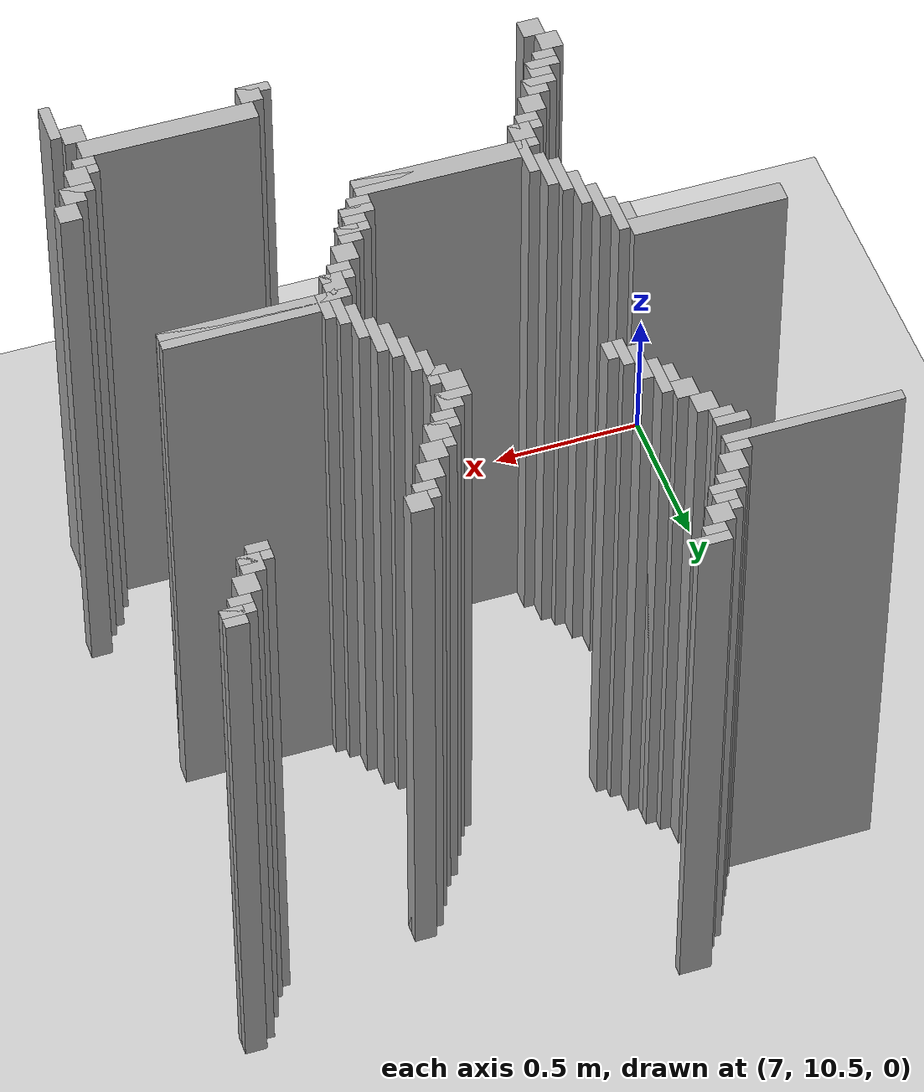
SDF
<sdf version="1.6">
 <world name="slam_world">
  <model name="ground_plane">
   <static>true</static>
   <link name="link">
    <collision name="collision">
     <geometry><plane><normal>0 0 1</normal><size>100 100</size></plane></geometry>
    </collision>
    <visual name="visual">
     <geometry><plane><normal>0 0 1</normal><size>100 100</size></plane></geometry>
     <material>
      <ambient>0.8 0.8 0.8 1</ambient>
      <diffuse>0.8 0.8 0.8 1</diffuse>
      <specular>0.8 0.8 0.8 1</specular>
     </material>
    </visual>
   </link>
  </model>
  <model name="wall_1577">
   <static>true</static>
   <pose>7.604408352668213 12.685614849187935 1.0 0 0 0</pose>
   <link name="link">
    <collision name="collision">
     <geometry><box><size>0.10440835266821345 0.03480278422273782 2.0</size></box></geometry>
    </collision>
    <visual name="visual">
     <geometry><box><size>0.10440835266821345 0.03480278422273782 2.0</size></box></geometry>
     <material><ambient>0.5 0.5 0.5 1</ambient><diffuse>0.7 0.7 0.7 1</diffuse></material>
    </visual>
   </link>
  </model>
  <model name="wall_1592">
   <static>true</static>
   <pose>7.587006960556844 12.650812064965196 1.0 0 0 0</pose>
   <link name="link">
    <collision name="collision">
     <geometry><box><size>0.06960556844547564 0.03480278422273782 2.0</size></box></geometry>
    </collision>
    <visual name="visual">
     <geometry><box><size>0.06960556844547564 0.03480278422273782 2.0</size></box></geometry>
     <material><ambient>0.5 0.5 0.5 1</ambient><diffuse>0.7 0.7 0.7 1</diffuse></material>
    </visual>
   </link>
  </model>
  <model name="wall_1607">
   <static>true</static>
   <pose>7.552204176334106 12.59860788863109 1.0 0 0 0</pose>
   <link name="link">
    <collision name="collision">
     <geometry><box><size>0.06960556844547564 0.06960556844547564 2.0</size></box></geometry>
    </collision>
    <visual name="visual">
     <geometry><box><size>0.06960556844547564 0.06960556844547564 2.0</size></box></geometry>
     <material><ambient>0.5 0.5 0.5 1</ambient><diffuse>0.7 0.7 0.7 1</diffuse></material>
    </visual>
   </link>
  </model>
  <model name="wall_1624">
   <static>true</static>
   <pose>7.534802784222737 12.581206496519721 1.0 0 0 0</pose>
   <link name="link">
    <collision name="collision">
     <geometry><box><size>0.10440835266821345 0.03480278422273782 2.0</size></box></geometry>
    </collision>
    <visual name="visual">
     <geometry><box><size>0.10440835266821345 0.03480278422273782 2.0</size></box></geometry>
     <material><ambient>0.5 0.5 0.5 1</ambient><diffuse>0.7 0.7 0.7 1</diffuse></material>
    </visual>
   </link>
  </model>
  <model name="wall_1637">
   <static>true</static>
   <pose>7.517401392111369 12.529002320185615 1.0 0 0 0</pose>
   <link name="link">
    <collision name="collision">
     <geometry><box><size>0.06960556844547564 0.06960556844547564 2.0</size></box></geometry>
    </collision>
    <visual name="visual">
     <geometry><box><size>0.06960556844547564 0.06960556844547564 2.0</size></box></geometry>
     <material><ambient>0.5 0.5 0.5 1</ambient><diffuse>0.7 0.7 0.7 1</diffuse></material>
    </visual>
   </link>
  </model>
  <model name="wall_1638">
   <static>true</static>
   <pose>8.979118329466356 12.529002320185615 1.0 0 0 0</pose>
   <link name="link">
    <collision name="collision">
     <geometry><box><size>0.06960556844547564 0.06960556844547564 2.0</size></box></geometry>
    </collision>
    <visual name="visual">
     <geometry><box><size>0.06960556844547564 0.06960556844547564 2.0</size></box></geometry>
     <material><ambient>0.5 0.5 0.5 1</ambient><diffuse>0.7 0.7 0.7 1</diffuse></material>
    </visual>
   </link>
  </model>
  <model name="wall_1652">
   <static>true</static>
   <pose>7.5 12.511600928074245 1.0 0 0 0</pose>
   <link name="link">
    <collision name="collision">
     <geometry><box><size>0.10440835266821345 0.03480278422273782 2.0</size></box></geometry>
    </collision>
    <visual name="visual">
     <geometry><box><size>0.10440835266821345 0.03480278422273782 2.0</size></box></geometry>
     <material><ambient>0.5 0.5 0.5 1</ambient><diffuse>0.7 0.7 0.7 1</diffuse></material>
    </visual>
   </link>
  </model>
  <model name="wall_1653">
   <static>true</static>
   <pose>8.961716937354987 12.511600928074245 1.0 0 0 0</pose>
   <link name="link">
    <collision name="collision">
     <geometry><box><size>0.10440835266821345 0.03480278422273782 2.0</size></box></geometry>
    </collision>
    <visual name="visual">
     <geometry><box><size>0.10440835266821345 0.03480278422273782 2.0</size></box></geometry>
     <material><ambient>0.5 0.5 0.5 1</ambient><diffuse>0.7 0.7 0.7 1</diffuse></material>
    </visual>
   </link>
  </model>
  <model name="wall_1665">
   <static>true</static>
   <pose>7.48259860788863 12.476798143851507 1.0 0 0 0</pose>
   <link name="link">
    <collision name="collision">
     <geometry><box><size>0.06960556844547564 0.03480278422273782 2.0</size></box></geometry>
    </collision>
    <visual name="visual">
     <geometry><box><size>0.06960556844547564 0.03480278422273782 2.0</size></box></geometry>
     <material><ambient>0.5 0.5 0.5 1</ambient><diffuse>0.7 0.7 0.7 1</diffuse></material>
    </visual>
   </link>
  </model>
  <model name="wall_1666">
   <static>true</static>
   <pose>8.944315545243619 12.476798143851507 1.0 0 0 0</pose>
   <link name="link">
    <collision name="collision">
     <geometry><box><size>0.06960556844547564 0.03480278422273782 2.0</size></box></geometry>
    </collision>
    <visual name="visual">
     <geometry><box><size>0.06960556844547564 0.03480278422273782 2.0</size></box></geometry>
     <material><ambient>0.5 0.5 0.5 1</ambient><diffuse>0.7 0.7 0.7 1</diffuse></material>
    </visual>
   </link>
  </model>
  <model name="wall_1678">
   <static>true</static>
   <pose>7.447795823665893 12.424593967517401 1.0 0 0 0</pose>
   <link name="link">
    <collision name="collision">
     <geometry><box><size>0.06960556844547564 0.06960556844547564 2.0</size></box></geometry>
    </collision>
    <visual name="visual">
     <geometry><box><size>0.06960556844547564 0.06960556844547564 2.0</size></box></geometry>
     <material><ambient>0.5 0.5 0.5 1</ambient><diffuse>0.7 0.7 0.7 1</diffuse></material>
    </visual>
   </link>
  </model>
  <model name="wall_1679">
   <static>true</static>
   <pose>8.909512761020881 12.424593967517401 1.0 0 0 0</pose>
   <link name="link">
    <collision name="collision">
     <geometry><box><size>0.06960556844547564 0.06960556844547564 2.0</size></box></geometry>
    </collision>
    <visual name="visual">
     <geometry><box><size>0.06960556844547564 0.06960556844547564 2.0</size></box></geometry>
     <material><ambient>0.5 0.5 0.5 1</ambient><diffuse>0.7 0.7 0.7 1</diffuse></material>
    </visual>
   </link>
  </model>
  <model name="wall_1695">
   <static>true</static>
   <pose>7.412993039443156 12.354988399071924 1.0 0 0 0</pose>
   <link name="link">
    <collision name="collision">
     <geometry><box><size>0.06960556844547564 0.06960556844547564 2.0</size></box></geometry>
    </collision>
    <visual name="visual">
     <geometry><box><size>0.06960556844547564 0.06960556844547564 2.0</size></box></geometry>
     <material><ambient>0.5 0.5 0.5 1</ambient><diffuse>0.7 0.7 0.7 1</diffuse></material>
    </visual>
   </link>
  </model>
  <model name="wall_1696">
   <static>true</static>
   <pose>8.874709976798144 12.354988399071924 1.0 0 0 0</pose>
   <link name="link">
    <collision name="collision">
     <geometry><box><size>0.06960556844547564 0.06960556844547564 2.0</size></box></geometry>
    </collision>
    <visual name="visual">
     <geometry><box><size>0.06960556844547564 0.06960556844547564 2.0</size></box></geometry>
     <material><ambient>0.5 0.5 0.5 1</ambient><diffuse>0.7 0.7 0.7 1</diffuse></material>
    </visual>
   </link>
  </model>
  <model name="wall_1711">
   <static>true</static>
   <pose>7.16937354988399 12.337587006960556 1.0 0 0 0</pose>
   <link name="link">
    <collision name="collision">
     <geometry><box><size>0.5568445475638051 0.03480278422273782 2.0</size></box></geometry>
    </collision>
    <visual name="visual">
     <geometry><box><size>0.5568445475638051 0.03480278422273782 2.0</size></box></geometry>
     <material><ambient>0.5 0.5 0.5 1</ambient><diffuse>0.7 0.7 0.7 1</diffuse></material>
    </visual>
   </link>
  </model>
  <model name="wall_1712">
   <static>true</static>
   <pose>8.857308584686775 12.337587006960556 1.0 0 0 0</pose>
   <link name="link">
    <collision name="collision">
     <geometry><box><size>0.10440835266821345 0.03480278422273782 2.0</size></box></geometry>
    </collision>
    <visual name="visual">
     <geometry><box><size>0.10440835266821345 0.03480278422273782 2.0</size></box></geometry>
     <material><ambient>0.5 0.5 0.5 1</ambient><diffuse>0.7 0.7 0.7 1</diffuse></material>
    </visual>
   </link>
  </model>
  <model name="wall_1725">
   <static>true</static>
   <pose>8.352668213457076 12.28538283062645 1.0 0 0 0</pose>
   <link name="link">
    <collision name="collision">
     <geometry><box><size>0.06960556844547564 0.06960556844547564 2.0</size></box></geometry>
    </collision>
    <visual name="visual">
     <geometry><box><size>0.06960556844547564 0.06960556844547564 2.0</size></box></geometry>
     <material><ambient>0.5 0.5 0.5 1</ambient><diffuse>0.7 0.7 0.7 1</diffuse></material>
    </visual>
   </link>
  </model>
  <model name="wall_1726">
   <static>true</static>
   <pose>8.839907192575406 12.302784222737818 1.0 0 0 0</pose>
   <link name="link">
    <collision name="collision">
     <geometry><box><size>0.06960556844547564 0.03480278422273782 2.0</size></box></geometry>
    </collision>
    <visual name="visual">
     <geometry><box><size>0.06960556844547564 0.03480278422273782 2.0</size></box></geometry>
     <material><ambient>0.5 0.5 0.5 1</ambient><diffuse>0.7 0.7 0.7 1</diffuse></material>
    </visual>
   </link>
  </model>
  <model name="wall_1741">
   <static>true</static>
   <pose>7.395591647331786 12.267981438515081 1.0 0 0 0</pose>
   <link name="link">
    <collision name="collision">
     <geometry><box><size>0.10440835266821345 0.03480278422273782 2.0</size></box></geometry>
    </collision>
    <visual name="visual">
     <geometry><box><size>0.10440835266821345 0.03480278422273782 2.0</size></box></geometry>
     <material><ambient>0.5 0.5 0.5 1</ambient><diffuse>0.7 0.7 0.7 1</diffuse></material>
    </visual>
   </link>
  </model>
  <model name="wall_1742">
   <static>true</static>
   <pose>8.335266821345707 12.267981438515081 1.0 0 0 0</pose>
   <link name="link">
    <collision name="collision">
     <geometry><box><size>0.10440835266821345 0.03480278422273782 2.0</size></box></geometry>
    </collision>
    <visual name="visual">
     <geometry><box><size>0.10440835266821345 0.03480278422273782 2.0</size></box></geometry>
     <material><ambient>0.5 0.5 0.5 1</ambient><diffuse>0.7 0.7 0.7 1</diffuse></material>
    </visual>
   </link>
  </model>
  <model name="wall_1759">
   <static>true</static>
   <pose>7.412993039443156 12.233178654292344 1.0 0 0 0</pose>
   <link name="link">
    <collision name="collision">
     <geometry><box><size>0.06960556844547564 0.03480278422273782 2.0</size></box></geometry>
    </collision>
    <visual name="visual">
     <geometry><box><size>0.06960556844547564 0.03480278422273782 2.0</size></box></geometry>
     <material><ambient>0.5 0.5 0.5 1</ambient><diffuse>0.7 0.7 0.7 1</diffuse></material>
    </visual>
   </link>
  </model>
  <model name="wall_1760">
   <static>true</static>
   <pose>8.317865429234338 12.233178654292344 1.0 0 0 0</pose>
   <link name="link">
    <collision name="collision">
     <geometry><box><size>0.06960556844547564 0.03480278422273782 2.0</size></box></geometry>
    </collision>
    <visual name="visual">
     <geometry><box><size>0.06960556844547564 0.03480278422273782 2.0</size></box></geometry>
     <material><ambient>0.5 0.5 0.5 1</ambient><diffuse>0.7 0.7 0.7 1</diffuse></material>
    </visual>
   </link>
  </model>
  <model name="wall_1775">
   <static>true</static>
   <pose>7.447795823665893 12.180974477958236 1.0 0 0 0</pose>
   <link name="link">
    <collision name="collision">
     <geometry><box><size>0.06960556844547564 0.06960556844547564 2.0</size></box></geometry>
    </collision>
    <visual name="visual">
     <geometry><box><size>0.06960556844547564 0.06960556844547564 2.0</size></box></geometry>
     <material><ambient>0.5 0.5 0.5 1</ambient><diffuse>0.7 0.7 0.7 1</diffuse></material>
    </visual>
   </link>
  </model>
  <model name="wall_1776">
   <static>true</static>
   <pose>8.2830626450116 12.180974477958236 1.0 0 0 0</pose>
   <link name="link">
    <collision name="collision">
     <geometry><box><size>0.06960556844547564 0.06960556844547564 2.0</size></box></geometry>
    </collision>
    <visual name="visual">
     <geometry><box><size>0.06960556844547564 0.06960556844547564 2.0</size></box></geometry>
     <material><ambient>0.5 0.5 0.5 1</ambient><diffuse>0.7 0.7 0.7 1</diffuse></material>
    </visual>
   </link>
  </model>
  <model name="wall_1791">
   <static>true</static>
   <pose>7.48259860788863 12.11136890951276 1.0 0 0 0</pose>
   <link name="link">
    <collision name="collision">
     <geometry><box><size>0.06960556844547564 0.06960556844547564 2.0</size></box></geometry>
    </collision>
    <visual name="visual">
     <geometry><box><size>0.06960556844547564 0.06960556844547564 2.0</size></box></geometry>
     <material><ambient>0.5 0.5 0.5 1</ambient><diffuse>0.7 0.7 0.7 1</diffuse></material>
    </visual>
   </link>
  </model>
  <model name="wall_1792">
   <static>true</static>
   <pose>8.248259860788863 12.11136890951276 1.0 0 0 0</pose>
   <link name="link">
    <collision name="collision">
     <geometry><box><size>0.06960556844547564 0.06960556844547564 2.0</size></box></geometry>
    </collision>
    <visual name="visual">
     <geometry><box><size>0.06960556844547564 0.06960556844547564 2.0</size></box></geometry>
     <material><ambient>0.5 0.5 0.5 1</ambient><diffuse>0.7 0.7 0.7 1</diffuse></material>
    </visual>
   </link>
  </model>
  <model name="wall_1807">
   <static>true</static>
   <pose>7.534802784222737 12.041763341067284 1.0 0 0 0</pose>
   <link name="link">
    <collision name="collision">
     <geometry><box><size>0.03480278422273782 0.13921113689095127 2.0</size></box></geometry>
    </collision>
    <visual name="visual">
     <geometry><box><size>0.03480278422273782 0.13921113689095127 2.0</size></box></geometry>
     <material><ambient>0.5 0.5 0.5 1</ambient><diffuse>0.7 0.7 0.7 1</diffuse></material>
    </visual>
   </link>
  </model>
  <model name="wall_1808">
   <static>true</static>
   <pose>8.230858468677495 12.093967517401392 1.0 0 0 0</pose>
   <link name="link">
    <collision name="collision">
     <geometry><box><size>0.10440835266821345 0.03480278422273782 2.0</size></box></geometry>
    </collision>
    <visual name="visual">
     <geometry><box><size>0.10440835266821345 0.03480278422273782 2.0</size></box></geometry>
     <material><ambient>0.5 0.5 0.5 1</ambient><diffuse>0.7 0.7 0.7 1</diffuse></material>
    </visual>
   </link>
  </model>
  <model name="wall_1819">
   <static>true</static>
   <pose>7.517401392111369 12.041763341067284 1.0 0 0 0</pose>
   <link name="link">
    <collision name="collision">
     <geometry><box><size>0.06960556844547564 0.06960556844547564 2.0</size></box></geometry>
    </collision>
    <visual name="visual">
     <geometry><box><size>0.06960556844547564 0.06960556844547564 2.0</size></box></geometry>
     <material><ambient>0.5 0.5 0.5 1</ambient><diffuse>0.7 0.7 0.7 1</diffuse></material>
    </visual>
   </link>
  </model>
  <model name="wall_1820">
   <static>true</static>
   <pose>8.213457076566124 12.041763341067284 1.0 0 0 0</pose>
   <link name="link">
    <collision name="collision">
     <geometry><box><size>0.06960556844547564 0.06960556844547564 2.0</size></box></geometry>
    </collision>
    <visual name="visual">
     <geometry><box><size>0.06960556844547564 0.06960556844547564 2.0</size></box></geometry>
     <material><ambient>0.5 0.5 0.5 1</ambient><diffuse>0.7 0.7 0.7 1</diffuse></material>
    </visual>
   </link>
  </model>
  <model name="wall_1833">
   <static>true</static>
   <pose>7.569605568445476 11.97215777262181 1.0 0 0 0</pose>
   <link name="link">
    <collision name="collision">
     <geometry><box><size>0.03480278422273782 0.13921113689095127 2.0</size></box></geometry>
    </collision>
    <visual name="visual">
     <geometry><box><size>0.03480278422273782 0.13921113689095127 2.0</size></box></geometry>
     <material><ambient>0.5 0.5 0.5 1</ambient><diffuse>0.7 0.7 0.7 1</diffuse></material>
    </visual>
   </link>
  </model>
  <model name="wall_1834">
   <static>true</static>
   <pose>8.196055684454755 12.024361948955915 1.0 0 0 0</pose>
   <link name="link">
    <collision name="collision">
     <geometry><box><size>0.10440835266821345 0.03480278422273782 2.0</size></box></geometry>
    </collision>
    <visual name="visual">
     <geometry><box><size>0.10440835266821345 0.03480278422273782 2.0</size></box></geometry>
     <material><ambient>0.5 0.5 0.5 1</ambient><diffuse>0.7 0.7 0.7 1</diffuse></material>
    </visual>
   </link>
  </model>
  <model name="wall_1844">
   <static>true</static>
   <pose>8.178654292343387 11.989559164733178 1.0 0 0 0</pose>
   <link name="link">
    <collision name="collision">
     <geometry><box><size>0.06960556844547564 0.03480278422273782 2.0</size></box></geometry>
    </collision>
    <visual name="visual">
     <geometry><box><size>0.06960556844547564 0.03480278422273782 2.0</size></box></geometry>
     <material><ambient>0.5 0.5 0.5 1</ambient><diffuse>0.7 0.7 0.7 1</diffuse></material>
    </visual>
   </link>
  </model>
  <model name="wall_1857">
   <static>true</static>
   <pose>7.604408352668213 11.919953596287703 1.0 0 0 0</pose>
   <link name="link">
    <collision name="collision">
     <geometry><box><size>0.03480278422273782 0.10440835266821345 2.0</size></box></geometry>
    </collision>
    <visual name="visual">
     <geometry><box><size>0.03480278422273782 0.10440835266821345 2.0</size></box></geometry>
     <material><ambient>0.5 0.5 0.5 1</ambient><diffuse>0.7 0.7 0.7 1</diffuse></material>
    </visual>
   </link>
  </model>
  <model name="wall_1858">
   <static>true</static>
   <pose>8.14385150812065 11.937354988399072 1.0 0 0 0</pose>
   <link name="link">
    <collision name="collision">
     <geometry><box><size>0.06960556844547564 0.06960556844547564 2.0</size></box></geometry>
    </collision>
    <visual name="visual">
     <geometry><box><size>0.06960556844547564 0.06960556844547564 2.0</size></box></geometry>
     <material><ambient>0.5 0.5 0.5 1</ambient><diffuse>0.7 0.7 0.7 1</diffuse></material>
    </visual>
   </link>
  </model>
  <model name="wall_1873">
   <static>true</static>
   <pose>7.6392111368909505 11.902552204176333 1.0 0 0 0</pose>
   <link name="link">
    <collision name="collision">
     <geometry><box><size>0.03480278422273782 0.06960556844547564 2.0</size></box></geometry>
    </collision>
    <visual name="visual">
     <geometry><box><size>0.03480278422273782 0.06960556844547564 2.0</size></box></geometry>
     <material><ambient>0.5 0.5 0.5 1</ambient><diffuse>0.7 0.7 0.7 1</diffuse></material>
    </visual>
   </link>
  </model>
  <model name="wall_1874">
   <static>true</static>
   <pose>8.12645011600928 11.919953596287703 1.0 0 0 0</pose>
   <link name="link">
    <collision name="collision">
     <geometry><box><size>0.10440835266821345 0.03480278422273782 2.0</size></box></geometry>
    </collision>
    <visual name="visual">
     <geometry><box><size>0.10440835266821345 0.03480278422273782 2.0</size></box></geometry>
     <material><ambient>0.5 0.5 0.5 1</ambient><diffuse>0.7 0.7 0.7 1</diffuse></material>
    </visual>
   </link>
  </model>
  <model name="wall_1884">
   <static>true</static>
   <pose>8.109048723897912 11.867749419953595 1.0 0 0 0</pose>
   <link name="link">
    <collision name="collision">
     <geometry><box><size>0.06960556844547564 0.06960556844547564 2.0</size></box></geometry>
    </collision>
    <visual name="visual">
     <geometry><box><size>0.06960556844547564 0.06960556844547564 2.0</size></box></geometry>
     <material><ambient>0.5 0.5 0.5 1</ambient><diffuse>0.7 0.7 0.7 1</diffuse></material>
    </visual>
   </link>
  </model>
  <model name="wall_1896">
   <static>true</static>
   <pose>8.161252900232018 11.79814385150812 1.0 0 0 0</pose>
   <link name="link">
    <collision name="collision">
     <geometry><box><size>0.03480278422273782 0.13921113689095127 2.0</size></box></geometry>
    </collision>
    <visual name="visual">
     <geometry><box><size>0.03480278422273782 0.13921113689095127 2.0</size></box></geometry>
     <material><ambient>0.5 0.5 0.5 1</ambient><diffuse>0.7 0.7 0.7 1</diffuse></material>
    </visual>
   </link>
  </model>
  <model name="wall_1911">
   <static>true</static>
   <pose>8.14385150812065 11.81554524361949 1.0 0 0 0</pose>
   <link name="link">
    <collision name="collision">
     <geometry><box><size>0.06960556844547564 0.03480278422273782 2.0</size></box></geometry>
    </collision>
    <visual name="visual">
     <geometry><box><size>0.06960556844547564 0.03480278422273782 2.0</size></box></geometry>
     <material><ambient>0.5 0.5 0.5 1</ambient><diffuse>0.7 0.7 0.7 1</diffuse></material>
    </visual>
   </link>
  </model>
  <model name="wall_1927">
   <static>true</static>
   <pose>8.196055684454755 11.728538283062644 1.0 0 0 0</pose>
   <link name="link">
    <collision name="collision">
     <geometry><box><size>0.03480278422273782 0.13921113689095127 2.0</size></box></geometry>
    </collision>
    <visual name="visual">
     <geometry><box><size>0.03480278422273782 0.13921113689095127 2.0</size></box></geometry>
     <material><ambient>0.5 0.5 0.5 1</ambient><diffuse>0.7 0.7 0.7 1</diffuse></material>
    </visual>
   </link>
  </model>
  <model name="wall_1943">
   <static>true</static>
   <pose>8.230858468677495 11.658932714617169 1.0 0 0 0</pose>
   <link name="link">
    <collision name="collision">
     <geometry><box><size>0.03480278422273782 0.13921113689095127 2.0</size></box></geometry>
    </collision>
    <visual name="visual">
     <geometry><box><size>0.03480278422273782 0.13921113689095127 2.0</size></box></geometry>
     <material><ambient>0.5 0.5 0.5 1</ambient><diffuse>0.7 0.7 0.7 1</diffuse></material>
    </visual>
   </link>
  </model>
  <model name="wall_1959">
   <static>true</static>
   <pose>8.265661252900232 11.624129930394432 1.0 0 0 0</pose>
   <link name="link">
    <collision name="collision">
     <geometry><box><size>0.03480278422273782 0.13921113689095127 2.0</size></box></geometry>
    </collision>
    <visual name="visual">
     <geometry><box><size>0.03480278422273782 0.13921113689095127 2.0</size></box></geometry>
     <material><ambient>0.5 0.5 0.5 1</ambient><diffuse>0.7 0.7 0.7 1</diffuse></material>
    </visual>
   </link>
  </model>
  <model name="wall_1985">
   <static>true</static>
   <pose>8.30046403712297 11.554524361948955 1.0 0 0 0</pose>
   <link name="link">
    <collision name="collision">
     <geometry><box><size>0.03480278422273782 0.13921113689095127 2.0</size></box></geometry>
    </collision>
    <visual name="visual">
     <geometry><box><size>0.03480278422273782 0.13921113689095127 2.0</size></box></geometry>
     <material><ambient>0.5 0.5 0.5 1</ambient><diffuse>0.7 0.7 0.7 1</diffuse></material>
    </visual>
   </link>
  </model>
  <model name="wall_2008">
   <static>true</static>
   <pose>8.335266821345707 11.450116009280743 1.0 0 0 0</pose>
   <link name="link">
    <collision name="collision">
     <geometry><box><size>0.03480278422273782 0.2088167053364269 2.0</size></box></geometry>
    </collision>
    <visual name="visual">
     <geometry><box><size>0.03480278422273782 0.2088167053364269 2.0</size></box></geometry>
     <material><ambient>0.5 0.5 0.5 1</ambient><diffuse>0.7 0.7 0.7 1</diffuse></material>
    </visual>
   </link>
  </model>
  <model name="wall_2023">
   <static>true</static>
   <pose>8.370069605568444 11.467517401392112 1.0 0 0 0</pose>
   <link name="link">
    <collision name="collision">
     <geometry><box><size>0.03480278422273782 0.10440835266821345 2.0</size></box></geometry>
    </collision>
    <visual name="visual">
     <geometry><box><size>0.03480278422273782 0.10440835266821345 2.0</size></box></geometry>
     <material><ambient>0.5 0.5 0.5 1</ambient><diffuse>0.7 0.7 0.7 1</diffuse></material>
    </visual>
   </link>
  </model>
  <model name="wall_2037">
   <static>true</static>
   <pose>7.16937354988399 11.450116009280743 1.0 0 0 0</pose>
   <link name="link">
    <collision name="collision">
     <geometry><box><size>0.4872389791183295 0.06960556844547564 2.0</size></box></geometry>
    </collision>
    <visual name="visual">
     <geometry><box><size>0.4872389791183295 0.06960556844547564 2.0</size></box></geometry>
     <material><ambient>0.5 0.5 0.5 1</ambient><diffuse>0.7 0.7 0.7 1</diffuse></material>
    </visual>
   </link>
  </model>
  <model name="wall_2038">
   <static>true</static>
   <pose>8.631090487238978 11.450116009280743 1.0 0 0 0</pose>
   <link name="link">
    <collision name="collision">
     <geometry><box><size>0.4872389791183295 0.06960556844547564 2.0</size></box></geometry>
    </collision>
    <visual name="visual">
     <geometry><box><size>0.4872389791183295 0.06960556844547564 2.0</size></box></geometry>
     <material><ambient>0.5 0.5 0.5 1</ambient><diffuse>0.7 0.7 0.7 1</diffuse></material>
    </visual>
   </link>
  </model>
  <model name="wall_2048">
   <static>true</static>
   <pose>7.430394431554524 11.380510440835266 1.0 0 0 0</pose>
   <link name="link">
    <collision name="collision">
     <geometry><box><size>0.03480278422273782 0.13921113689095127 2.0</size></box></geometry>
    </collision>
    <visual name="visual">
     <geometry><box><size>0.03480278422273782 0.13921113689095127 2.0</size></box></geometry>
     <material><ambient>0.5 0.5 0.5 1</ambient><diffuse>0.7 0.7 0.7 1</diffuse></material>
    </visual>
   </link>
  </model>
  <model name="wall_2049">
   <static>true</static>
   <pose>8.578886310904872 11.432714617169372 1.0 0 0 0</pose>
   <link name="link">
    <collision name="collision">
     <geometry><box><size>0.5916473317865429 0.03480278422273782 2.0</size></box></geometry>
    </collision>
    <visual name="visual">
     <geometry><box><size>0.5916473317865429 0.03480278422273782 2.0</size></box></geometry>
     <material><ambient>0.5 0.5 0.5 1</ambient><diffuse>0.7 0.7 0.7 1</diffuse></material>
    </visual>
   </link>
  </model>
  <model name="wall_2059">
   <static>true</static>
   <pose>7.412993039443156 11.380510440835266 1.0 0 0 0</pose>
   <link name="link">
    <collision name="collision">
     <geometry><box><size>0.06960556844547564 0.06960556844547564 2.0</size></box></geometry>
    </collision>
    <visual name="visual">
     <geometry><box><size>0.06960556844547564 0.06960556844547564 2.0</size></box></geometry>
     <material><ambient>0.5 0.5 0.5 1</ambient><diffuse>0.7 0.7 0.7 1</diffuse></material>
    </visual>
   </link>
  </model>
  <model name="wall_2060">
   <static>true</static>
   <pose>8.317865429234338 11.380510440835266 1.0 0 0 0</pose>
   <link name="link">
    <collision name="collision">
     <geometry><box><size>0.06960556844547564 0.06960556844547564 2.0</size></box></geometry>
    </collision>
    <visual name="visual">
     <geometry><box><size>0.06960556844547564 0.06960556844547564 2.0</size></box></geometry>
     <material><ambient>0.5 0.5 0.5 1</ambient><diffuse>0.7 0.7 0.7 1</diffuse></material>
    </visual>
   </link>
  </model>
  <model name="wall_2071">
   <static>true</static>
   <pose>7.465197215777262 11.310904872389791 1.0 0 0 0</pose>
   <link name="link">
    <collision name="collision">
     <geometry><box><size>0.03480278422273782 0.13921113689095127 2.0</size></box></geometry>
    </collision>
    <visual name="visual">
     <geometry><box><size>0.03480278422273782 0.13921113689095127 2.0</size></box></geometry>
     <material><ambient>0.5 0.5 0.5 1</ambient><diffuse>0.7 0.7 0.7 1</diffuse></material>
    </visual>
   </link>
  </model>
  <model name="wall_2072">
   <static>true</static>
   <pose>8.30046403712297 11.363109048723897 1.0 0 0 0</pose>
   <link name="link">
    <collision name="collision">
     <geometry><box><size>0.10440835266821345 0.03480278422273782 2.0</size></box></geometry>
    </collision>
    <visual name="visual">
     <geometry><box><size>0.10440835266821345 0.03480278422273782 2.0</size></box></geometry>
     <material><ambient>0.5 0.5 0.5 1</ambient><diffuse>0.7 0.7 0.7 1</diffuse></material>
    </visual>
   </link>
  </model>
  <model name="wall_2081">
   <static>true</static>
   <pose>8.2830626450116 11.32830626450116 1.0 0 0 0</pose>
   <link name="link">
    <collision name="collision">
     <geometry><box><size>0.06960556844547564 0.03480278422273782 2.0</size></box></geometry>
    </collision>
    <visual name="visual">
     <geometry><box><size>0.06960556844547564 0.03480278422273782 2.0</size></box></geometry>
     <material><ambient>0.5 0.5 0.5 1</ambient><diffuse>0.7 0.7 0.7 1</diffuse></material>
    </visual>
   </link>
  </model>
  <model name="wall_2091">
   <static>true</static>
   <pose>7.5 11.241299303944315 1.0 0 0 0</pose>
   <link name="link">
    <collision name="collision">
     <geometry><box><size>0.03480278422273782 0.13921113689095127 2.0</size></box></geometry>
    </collision>
    <visual name="visual">
     <geometry><box><size>0.03480278422273782 0.13921113689095127 2.0</size></box></geometry>
     <material><ambient>0.5 0.5 0.5 1</ambient><diffuse>0.7 0.7 0.7 1</diffuse></material>
    </visual>
   </link>
  </model>
  <model name="wall_2092">
   <static>true</static>
   <pose>8.248259860788863 11.276102088167052 1.0 0 0 0</pose>
   <link name="link">
    <collision name="collision">
     <geometry><box><size>0.06960556844547564 0.06960556844547564 2.0</size></box></geometry>
    </collision>
    <visual name="visual">
     <geometry><box><size>0.06960556844547564 0.06960556844547564 2.0</size></box></geometry>
     <material><ambient>0.5 0.5 0.5 1</ambient><diffuse>0.7 0.7 0.7 1</diffuse></material>
    </visual>
   </link>
  </model>
  <model name="wall_2103">
   <static>true</static>
   <pose>7.534802784222737 11.17169373549884 1.0 0 0 0</pose>
   <link name="link">
    <collision name="collision">
     <geometry><box><size>0.03480278422273782 0.13921113689095127 2.0</size></box></geometry>
    </collision>
    <visual name="visual">
     <geometry><box><size>0.03480278422273782 0.13921113689095127 2.0</size></box></geometry>
     <material><ambient>0.5 0.5 0.5 1</ambient><diffuse>0.7 0.7 0.7 1</diffuse></material>
    </visual>
   </link>
  </model>
  <model name="wall_2104">
   <static>true</static>
   <pose>8.213457076566124 11.206496519721577 1.0 0 0 0</pose>
   <link name="link">
    <collision name="collision">
     <geometry><box><size>0.06960556844547564 0.06960556844547564 2.0</size></box></geometry>
    </collision>
    <visual name="visual">
     <geometry><box><size>0.06960556844547564 0.06960556844547564 2.0</size></box></geometry>
     <material><ambient>0.5 0.5 0.5 1</ambient><diffuse>0.7 0.7 0.7 1</diffuse></material>
    </visual>
   </link>
  </model>
  <model name="wall_2115">
   <static>true</static>
   <pose>7.569605568445476 11.1368909512761 1.0 0 0 0</pose>
   <link name="link">
    <collision name="collision">
     <geometry><box><size>0.03480278422273782 0.13921113689095127 2.0</size></box></geometry>
    </collision>
    <visual name="visual">
     <geometry><box><size>0.03480278422273782 0.13921113689095127 2.0</size></box></geometry>
     <material><ambient>0.5 0.5 0.5 1</ambient><diffuse>0.7 0.7 0.7 1</diffuse></material>
    </visual>
   </link>
  </model>
  <model name="wall_2116">
   <static>true</static>
   <pose>8.196055684454755 11.189095127610209 1.0 0 0 0</pose>
   <link name="link">
    <collision name="collision">
     <geometry><box><size>0.10440835266821345 0.03480278422273782 2.0</size></box></geometry>
    </collision>
    <visual name="visual">
     <geometry><box><size>0.10440835266821345 0.03480278422273782 2.0</size></box></geometry>
     <material><ambient>0.5 0.5 0.5 1</ambient><diffuse>0.7 0.7 0.7 1</diffuse></material>
    </visual>
   </link>
  </model>
  <model name="wall_2125">
   <static>true</static>
   <pose>8.178654292343387 11.1368909512761 1.0 0 0 0</pose>
   <link name="link">
    <collision name="collision">
     <geometry><box><size>0.06960556844547564 0.06960556844547564 2.0</size></box></geometry>
    </collision>
    <visual name="visual">
     <geometry><box><size>0.06960556844547564 0.06960556844547564 2.0</size></box></geometry>
     <material><ambient>0.5 0.5 0.5 1</ambient><diffuse>0.7 0.7 0.7 1</diffuse></material>
    </visual>
   </link>
  </model>
  <model name="wall_2134">
   <static>true</static>
   <pose>7.604408352668213 11.032482598607888 1.0 0 0 0</pose>
   <link name="link">
    <collision name="collision">
     <geometry><box><size>0.03480278422273782 0.2088167053364269 2.0</size></box></geometry>
    </collision>
    <visual name="visual">
     <geometry><box><size>0.03480278422273782 0.2088167053364269 2.0</size></box></geometry>
     <material><ambient>0.5 0.5 0.5 1</ambient><diffuse>0.7 0.7 0.7 1</diffuse></material>
    </visual>
   </link>
  </model>
  <model name="wall_2135">
   <static>true</static>
   <pose>8.161252900232018 11.119489559164732 1.0 0 0 0</pose>
   <link name="link">
    <collision name="collision">
     <geometry><box><size>0.10440835266821345 0.03480278422273782 2.0</size></box></geometry>
    </collision>
    <visual name="visual">
     <geometry><box><size>0.10440835266821345 0.03480278422273782 2.0</size></box></geometry>
     <material><ambient>0.5 0.5 0.5 1</ambient><diffuse>0.7 0.7 0.7 1</diffuse></material>
    </visual>
   </link>
  </model>
  <model name="wall_2144">
   <static>true</static>
   <pose>8.14385150812065 11.084686774941995 1.0 0 0 0</pose>
   <link name="link">
    <collision name="collision">
     <geometry><box><size>0.06960556844547564 0.03480278422273782 2.0</size></box></geometry>
    </collision>
    <visual name="visual">
     <geometry><box><size>0.06960556844547564 0.03480278422273782 2.0</size></box></geometry>
     <material><ambient>0.5 0.5 0.5 1</ambient><diffuse>0.7 0.7 0.7 1</diffuse></material>
    </visual>
   </link>
  </model>
  <model name="wall_2154">
   <static>true</static>
   <pose>7.882830626450116 11.032482598607888 1.0 0 0 0</pose>
   <link name="link">
    <collision name="collision">
     <geometry><box><size>0.5220417633410672 0.06960556844547564 2.0</size></box></geometry>
    </collision>
    <visual name="visual">
     <geometry><box><size>0.5220417633410672 0.06960556844547564 2.0</size></box></geometry>
     <material><ambient>0.5 0.5 0.5 1</ambient><diffuse>0.7 0.7 0.7 1</diffuse></material>
    </visual>
   </link>
  </model>
  <model name="wall_2166">
   <static>true</static>
   <pose>7.848027842227378 11.01508120649652 1.0 0 0 0</pose>
   <link name="link">
    <collision name="collision">
     <geometry><box><size>0.5916473317865429 0.03480278422273782 2.0</size></box></geometry>
    </collision>
    <visual name="visual">
     <geometry><box><size>0.5916473317865429 0.03480278422273782 2.0</size></box></geometry>
     <material><ambient>0.5 0.5 0.5 1</ambient><diffuse>0.7 0.7 0.7 1</diffuse></material>
    </visual>
   </link>
  </model>
  <model name="wall_2180">
   <static>true</static>
   <pose>7.587006960556844 10.962877030162412 1.0 0 0 0</pose>
   <link name="link">
    <collision name="collision">
     <geometry><box><size>0.06960556844547564 0.06960556844547564 2.0</size></box></geometry>
    </collision>
    <visual name="visual">
     <geometry><box><size>0.06960556844547564 0.06960556844547564 2.0</size></box></geometry>
     <material><ambient>0.5 0.5 0.5 1</ambient><diffuse>0.7 0.7 0.7 1</diffuse></material>
    </visual>
   </link>
  </model>
  <model name="wall_2195">
   <static>true</static>
   <pose>7.569605568445476 10.945475638051043 1.0 0 0 0</pose>
   <link name="link">
    <collision name="collision">
     <geometry><box><size>0.10440835266821345 0.03480278422273782 2.0</size></box></geometry>
    </collision>
    <visual name="visual">
     <geometry><box><size>0.10440835266821345 0.03480278422273782 2.0</size></box></geometry>
     <material><ambient>0.5 0.5 0.5 1</ambient><diffuse>0.7 0.7 0.7 1</diffuse></material>
    </visual>
   </link>
  </model>
  <model name="wall_2208">
   <static>true</static>
   <pose>7.552204176334106 10.910672853828306 1.0 0 0 0</pose>
   <link name="link">
    <collision name="collision">
     <geometry><box><size>0.06960556844547564 0.03480278422273782 2.0</size></box></geometry>
    </collision>
    <visual name="visual">
     <geometry><box><size>0.06960556844547564 0.03480278422273782 2.0</size></box></geometry>
     <material><ambient>0.5 0.5 0.5 1</ambient><diffuse>0.7 0.7 0.7 1</diffuse></material>
    </visual>
   </link>
  </model>
  <model name="wall_2220">
   <static>true</static>
   <pose>7.517401392111369 10.8584686774942 1.0 0 0 0</pose>
   <link name="link">
    <collision name="collision">
     <geometry><box><size>0.06960556844547564 0.06960556844547564 2.0</size></box></geometry>
    </collision>
    <visual name="visual">
     <geometry><box><size>0.06960556844547564 0.06960556844547564 2.0</size></box></geometry>
     <material><ambient>0.5 0.5 0.5 1</ambient><diffuse>0.7 0.7 0.7 1</diffuse></material>
    </visual>
   </link>
  </model>
  <model name="wall_2221">
   <static>true</static>
   <pose>8.979118329466356 10.8584686774942 1.0 0 0 0</pose>
   <link name="link">
    <collision name="collision">
     <geometry><box><size>0.06960556844547564 0.06960556844547564 2.0</size></box></geometry>
    </collision>
    <visual name="visual">
     <geometry><box><size>0.06960556844547564 0.06960556844547564 2.0</size></box></geometry>
     <material><ambient>0.5 0.5 0.5 1</ambient><diffuse>0.7 0.7 0.7 1</diffuse></material>
    </visual>
   </link>
  </model>
  <model name="wall_2235">
   <static>true</static>
   <pose>7.48259860788863 10.788863109048723 1.0 0 0 0</pose>
   <link name="link">
    <collision name="collision">
     <geometry><box><size>0.06960556844547564 0.06960556844547564 2.0</size></box></geometry>
    </collision>
    <visual name="visual">
     <geometry><box><size>0.06960556844547564 0.06960556844547564 2.0</size></box></geometry>
     <material><ambient>0.5 0.5 0.5 1</ambient><diffuse>0.7 0.7 0.7 1</diffuse></material>
    </visual>
   </link>
  </model>
  <model name="wall_2236">
   <static>true</static>
   <pose>8.944315545243619 10.788863109048723 1.0 0 0 0</pose>
   <link name="link">
    <collision name="collision">
     <geometry><box><size>0.06960556844547564 0.06960556844547564 2.0</size></box></geometry>
    </collision>
    <visual name="visual">
     <geometry><box><size>0.06960556844547564 0.06960556844547564 2.0</size></box></geometry>
     <material><ambient>0.5 0.5 0.5 1</ambient><diffuse>0.7 0.7 0.7 1</diffuse></material>
    </visual>
   </link>
  </model>
  <model name="wall_2250">
   <static>true</static>
   <pose>7.465197215777262 10.771461716937354 1.0 0 0 0</pose>
   <link name="link">
    <collision name="collision">
     <geometry><box><size>0.10440835266821345 0.03480278422273782 2.0</size></box></geometry>
    </collision>
    <visual name="visual">
     <geometry><box><size>0.10440835266821345 0.03480278422273782 2.0</size></box></geometry>
     <material><ambient>0.5 0.5 0.5 1</ambient><diffuse>0.7 0.7 0.7 1</diffuse></material>
    </visual>
   </link>
  </model>
  <model name="wall_2251">
   <static>true</static>
   <pose>8.92691415313225 10.771461716937354 1.0 0 0 0</pose>
   <link name="link">
    <collision name="collision">
     <geometry><box><size>0.10440835266821345 0.03480278422273782 2.0</size></box></geometry>
    </collision>
    <visual name="visual">
     <geometry><box><size>0.10440835266821345 0.03480278422273782 2.0</size></box></geometry>
     <material><ambient>0.5 0.5 0.5 1</ambient><diffuse>0.7 0.7 0.7 1</diffuse></material>
    </visual>
   </link>
  </model>
  <model name="wall_2261">
   <static>true</static>
   <pose>7.447795823665893 10.719257540603248 1.0 0 0 0</pose>
   <link name="link">
    <collision name="collision">
     <geometry><box><size>0.06960556844547564 0.06960556844547564 2.0</size></box></geometry>
    </collision>
    <visual name="visual">
     <geometry><box><size>0.06960556844547564 0.06960556844547564 2.0</size></box></geometry>
     <material><ambient>0.5 0.5 0.5 1</ambient><diffuse>0.7 0.7 0.7 1</diffuse></material>
    </visual>
   </link>
  </model>
  <model name="wall_2262">
   <static>true</static>
   <pose>8.909512761020881 10.719257540603248 1.0 0 0 0</pose>
   <link name="link">
    <collision name="collision">
     <geometry><box><size>0.06960556844547564 0.06960556844547564 2.0</size></box></geometry>
    </collision>
    <visual name="visual">
     <geometry><box><size>0.06960556844547564 0.06960556844547564 2.0</size></box></geometry>
     <material><ambient>0.5 0.5 0.5 1</ambient><diffuse>0.7 0.7 0.7 1</diffuse></material>
    </visual>
   </link>
  </model>
  <model name="wall_2272">
   <static>true</static>
   <pose>7.430394431554524 10.70185614849188 1.0 0 0 0</pose>
   <link name="link">
    <collision name="collision">
     <geometry><box><size>0.10440835266821345 0.03480278422273782 2.0</size></box></geometry>
    </collision>
    <visual name="visual">
     <geometry><box><size>0.10440835266821345 0.03480278422273782 2.0</size></box></geometry>
     <material><ambient>0.5 0.5 0.5 1</ambient><diffuse>0.7 0.7 0.7 1</diffuse></material>
    </visual>
   </link>
  </model>
  <model name="wall_2273">
   <static>true</static>
   <pose>8.892111368909513 10.70185614849188 1.0 0 0 0</pose>
   <link name="link">
    <collision name="collision">
     <geometry><box><size>0.10440835266821345 0.03480278422273782 2.0</size></box></geometry>
    </collision>
    <visual name="visual">
     <geometry><box><size>0.10440835266821345 0.03480278422273782 2.0</size></box></geometry>
     <material><ambient>0.5 0.5 0.5 1</ambient><diffuse>0.7 0.7 0.7 1</diffuse></material>
    </visual>
   </link>
  </model>
  <model name="wall_2283">
   <static>true</static>
   <pose>7.412993039443156 10.66705336426914 1.0 0 0 0</pose>
   <link name="link">
    <collision name="collision">
     <geometry><box><size>0.06960556844547564 0.03480278422273782 2.0</size></box></geometry>
    </collision>
    <visual name="visual">
     <geometry><box><size>0.06960556844547564 0.03480278422273782 2.0</size></box></geometry>
     <material><ambient>0.5 0.5 0.5 1</ambient><diffuse>0.7 0.7 0.7 1</diffuse></material>
    </visual>
   </link>
  </model>
  <model name="wall_2284">
   <static>true</static>
   <pose>8.874709976798144 10.66705336426914 1.0 0 0 0</pose>
   <link name="link">
    <collision name="collision">
     <geometry><box><size>0.06960556844547564 0.03480278422273782 2.0</size></box></geometry>
    </collision>
    <visual name="visual">
     <geometry><box><size>0.06960556844547564 0.03480278422273782 2.0</size></box></geometry>
     <material><ambient>0.5 0.5 0.5 1</ambient><diffuse>0.7 0.7 0.7 1</diffuse></material>
    </visual>
   </link>
  </model>
  <model name="wall_2294">
   <static>true</static>
   <pose>7.378190255220417 10.614849187935034 1.0 0 0 0</pose>
   <link name="link">
    <collision name="collision">
     <geometry><box><size>0.06960556844547564 0.06960556844547564 2.0</size></box></geometry>
    </collision>
    <visual name="visual">
     <geometry><box><size>0.06960556844547564 0.06960556844547564 2.0</size></box></geometry>
     <material><ambient>0.5 0.5 0.5 1</ambient><diffuse>0.7 0.7 0.7 1</diffuse></material>
    </visual>
   </link>
  </model>
  <model name="wall_2295">
   <static>true</static>
   <pose>8.596287703016241 10.614849187935034 1.0 0 0 0</pose>
   <link name="link">
    <collision name="collision">
     <geometry><box><size>0.5568445475638051 0.06960556844547564 2.0</size></box></geometry>
    </collision>
    <visual name="visual">
     <geometry><box><size>0.5568445475638051 0.06960556844547564 2.0</size></box></geometry>
     <material><ambient>0.5 0.5 0.5 1</ambient><diffuse>0.7 0.7 0.7 1</diffuse></material>
    </visual>
   </link>
  </model>
  <model name="wall_2309">
   <static>true</static>
   <pose>7.412993039443156 10.54524361948956 1.0 0 0 0</pose>
   <link name="link">
    <collision name="collision">
     <geometry><box><size>0.06960556844547564 0.06960556844547564 2.0</size></box></geometry>
    </collision>
    <visual name="visual">
     <geometry><box><size>0.06960556844547564 0.06960556844547564 2.0</size></box></geometry>
     <material><ambient>0.5 0.5 0.5 1</ambient><diffuse>0.7 0.7 0.7 1</diffuse></material>
    </visual>
   </link>
  </model>
  <model name="wall_2310">
   <static>true</static>
   <pose>8.317865429234338 10.54524361948956 1.0 0 0 0</pose>
   <link name="link">
    <collision name="collision">
     <geometry><box><size>0.06960556844547564 0.06960556844547564 2.0</size></box></geometry>
    </collision>
    <visual name="visual">
     <geometry><box><size>0.06960556844547564 0.06960556844547564 2.0</size></box></geometry>
     <material><ambient>0.5 0.5 0.5 1</ambient><diffuse>0.7 0.7 0.7 1</diffuse></material>
    </visual>
   </link>
  </model>
  <model name="wall_2311">
   <static>true</static>
   <pose>8.874709976798144 10.54524361948956 1.0 0 0 0</pose>
   <link name="link">
    <collision name="collision">
     <geometry><box><size>0.06960556844547564 0.06960556844547564 2.0</size></box></geometry>
    </collision>
    <visual name="visual">
     <geometry><box><size>0.06960556844547564 0.06960556844547564 2.0</size></box></geometry>
     <material><ambient>0.5 0.5 0.5 1</ambient><diffuse>0.7 0.7 0.7 1</diffuse></material>
    </visual>
   </link>
  </model>
  <model name="wall_2325">
   <static>true</static>
   <pose>8.30046403712297 10.52784222737819 1.0 0 0 0</pose>
   <link name="link">
    <collision name="collision">
     <geometry><box><size>0.10440835266821345 0.03480278422273782 2.0</size></box></geometry>
    </collision>
    <visual name="visual">
     <geometry><box><size>0.10440835266821345 0.03480278422273782 2.0</size></box></geometry>
     <material><ambient>0.5 0.5 0.5 1</ambient><diffuse>0.7 0.7 0.7 1</diffuse></material>
    </visual>
   </link>
  </model>
  <model name="wall_2326">
   <static>true</static>
   <pose>8.92691415313225 10.475638051044083 1.0 0 0 0</pose>
   <link name="link">
    <collision name="collision">
     <geometry><box><size>0.03480278422273782 0.13921113689095127 2.0</size></box></geometry>
    </collision>
    <visual name="visual">
     <geometry><box><size>0.03480278422273782 0.13921113689095127 2.0</size></box></geometry>
     <material><ambient>0.5 0.5 0.5 1</ambient><diffuse>0.7 0.7 0.7 1</diffuse></material>
    </visual>
   </link>
  </model>
 </world>
</sdf>
